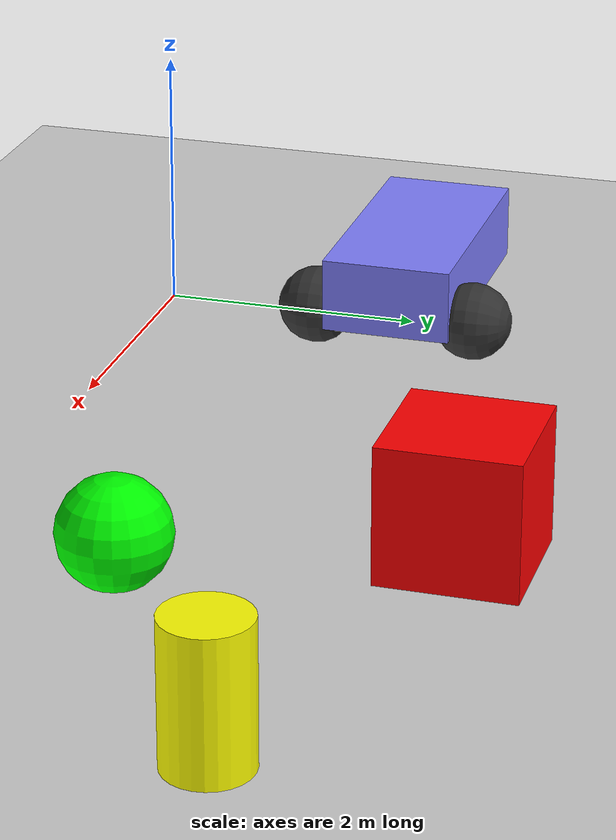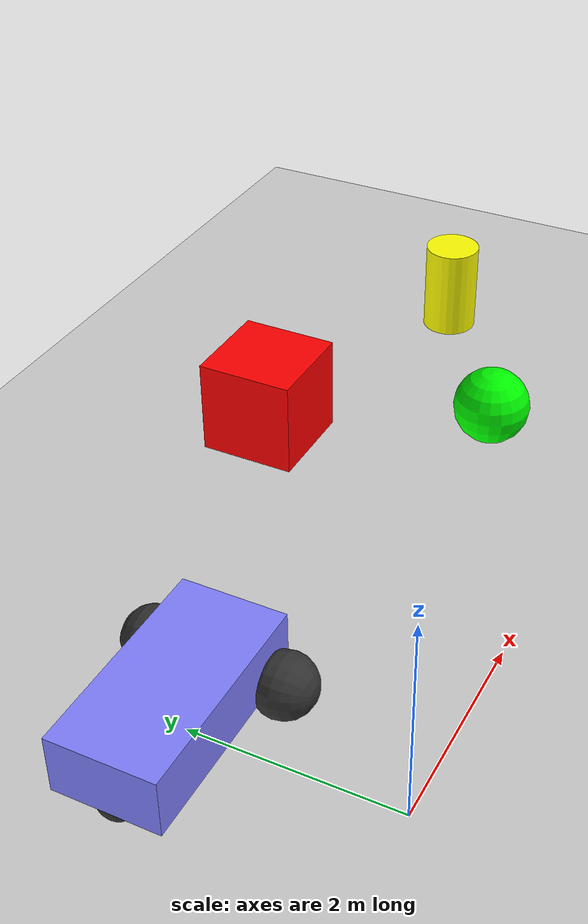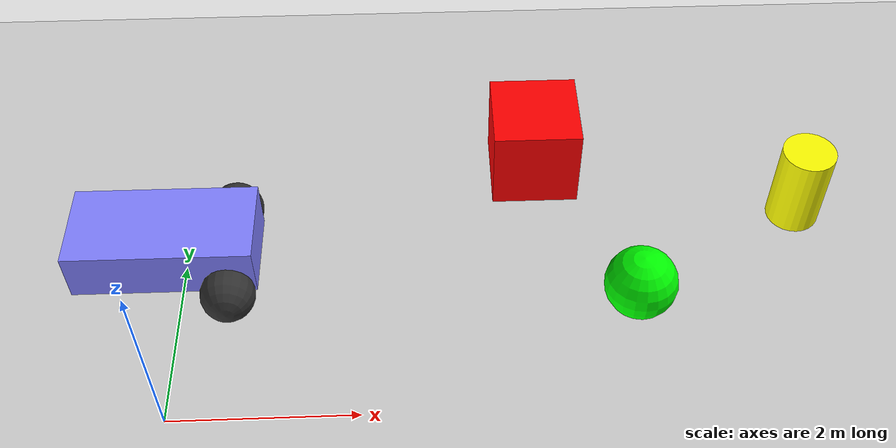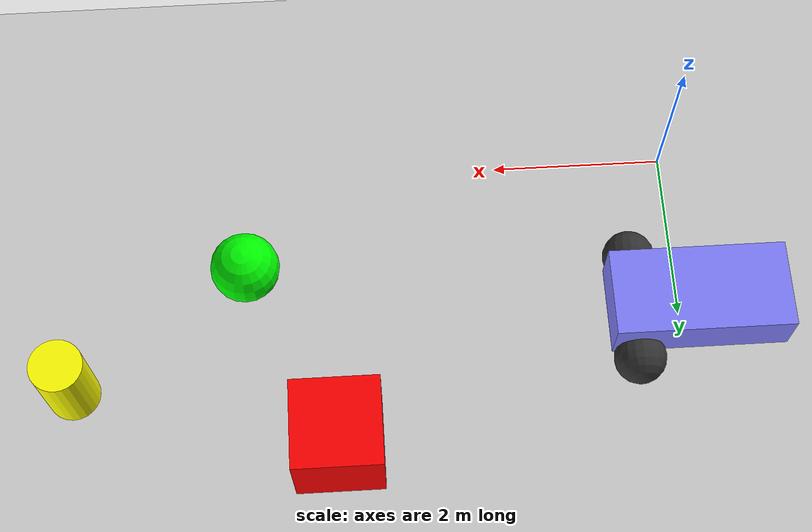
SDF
<?xml version="1.0" ?>
<sdf version="1.6">
  <world name="pilotage_yard">

    <physics name="1ms" type="ignored">
      <max_step_size>0.001</max_step_size>
      <real_time_factor>1.0</real_time_factor>
    </physics>
    <plugin
      filename="gz-sim-physics-system"
      name="gz::sim::systems::Physics">
    </plugin>
    <plugin
      filename="gz-sim-sensors-system"
      name="gz::sim::systems::Sensors">
      <render_engine>ogre2</render_engine>
    </plugin>
    <plugin
      filename="gz-sim-user-commands-system"
      name="gz::sim::systems::UserCommands">
    </plugin>
    <plugin
      filename="gz-sim-scene-broadcaster-system"
      name="gz::sim::systems::SceneBroadcaster">
    </plugin>

    <scene>
      <ambient>1.0 1.0 1.0</ambient>
      <background>0.8 0.8 0.8</background>
      <grid>false</grid>
    </scene>

    <light type="directional" name="sun">
      <cast_shadows>true</cast_shadows>
      <pose>0 0 10 0 0 0</pose>
      <diffuse>1 1 1 1</diffuse>
      <specular>0.5 0.5 0.5 1</specular>
      <attenuation>
        <range>1000</range>
        <constant>0.9</constant>
        <linear>0.01</linear>
        <quadratic>0.001</quadratic>
      </attenuation>
      <direction>-0.5 0.1 -0.9</direction>
    </light>

    <model name="ground_plane">
      <static>true</static>
      <link name="link">
        <collision name="collision">
          <geometry>
            <plane>
              <normal>0 0 1</normal>
              <size>100 100</size>
            </plane>
          </geometry>
        </collision>
        <visual name="visual">
          <geometry>
            <plane>
              <normal>0 0 1</normal>
              <size>100 100</size>
            </plane>
          </geometry>
          <material>
            <ambient>0.8 0.8 0.8 1</ambient>
            <diffuse>0.8 0.8 0.8 1</diffuse>
            <specular>0.8 0.8 0.8 1</specular>
          </material>
        </visual>
      </link>
    </model>

    <!-- Colored primitive obstacles ahead of vehicle_blue's start pose and
         heading, so the onboard camera view visibly changes while driving
         forward. -->
    <model name="obstacle_red_box">
      <static>true</static>
      <pose>4 3.4 0.5 0 0 0</pose>
      <link name="link">
        <visual name="visual">
          <geometry>
            <box>
              <size>1 1 1</size>
            </box>
          </geometry>
          <material>
            <ambient>1 0 0 1</ambient>
            <diffuse>1 0 0 1</diffuse>
            <specular>1 0 0 1</specular>
          </material>
        </visual>
        <collision name="collision">
          <geometry>
            <box>
              <size>1 1 1</size>
            </box>
          </geometry>
        </collision>
      </link>
    </model>

    <model name="obstacle_green_sphere">
      <static>true</static>
      <pose>5 1.3 0.4 0 0 0</pose>
      <link name="link">
        <visual name="visual">
          <geometry>
            <sphere>
              <radius>0.4</radius>
            </sphere>
          </geometry>
          <material>
            <ambient>0 1 0 1</ambient>
            <diffuse>0 1 0 1</diffuse>
            <specular>0 1 0 1</specular>
          </material>
        </visual>
        <collision name="collision">
          <geometry>
            <sphere>
              <radius>0.4</radius>
            </sphere>
          </geometry>
        </collision>
      </link>
    </model>

    <model name="obstacle_yellow_cylinder">
      <static>true</static>
      <pose>7 2.6 0.5 0 0 0</pose>
      <link name="link">
        <visual name="visual">
          <geometry>
            <cylinder>
              <radius>0.3</radius>
              <length>1</length>
            </cylinder>
          </geometry>
          <material>
            <ambient>1 1 0 1</ambient>
            <diffuse>1 1 0 1</diffuse>
            <specular>1 1 0 1</specular>
          </material>
        </visual>
        <collision name="collision">
          <geometry>
            <cylinder>
              <radius>0.3</radius>
              <length>1</length>
            </cylinder>
          </geometry>
        </collision>
      </link>
    </model>

    <model name='vehicle_blue'>
      <pose>0 2 0.325 0 -0 0</pose>

      <link name='chassis'>
        <pose>-0.151427 -0 0.175 0 -0 0</pose>
        <inertial>
          <mass>1.14395</mass>
          <inertia>
            <ixx>0.126164</ixx>
            <ixy>0</ixy>
            <ixz>0</ixz>
            <iyy>0.416519</iyy>
            <iyz>0</iyz>
            <izz>0.481014</izz>
          </inertia>
        </inertial>
        <visual name='visual'>
          <geometry>
            <box>
              <size>2.01142 1 0.568726</size>
            </box>
          </geometry>
          <material>
            <ambient>0.5 0.5 1.0 1</ambient>
            <diffuse>0.5 0.5 1.0 1</diffuse>
            <specular>0.0 0.0 1.0 1</specular>
          </material>
        </visual>
        <collision name='collision'>
          <geometry>
            <box>
              <size>2.01142 1 0.568726</size>
            </box>
          </geometry>
        </collision>

        <!-- Onboard forward-facing camera, rigidly attached to the chassis
             (ADR-0008: capture as close as practical to the render
             pipeline; here, mounted directly on the vehicle body). -->
        <sensor name="camera" type="camera">
          <pose>1.1 0 0.3 0 0 0</pose>
          <camera>
            <horizontal_fov>1.396</horizontal_fov>
            <image>
              <width>320</width>
              <height>240</height>
            </image>
            <clip>
              <near>0.1</near>
              <far>100</far>
            </clip>
          </camera>
          <always_on>1</always_on>
          <update_rate>30</update_rate>
          <visualize>true</visualize>
          <topic>camera</topic>
        </sensor>

        <sensor name="chase_camera" type="camera">
          <pose>-3.0 0 1.8 0 0.30 0</pose>
          <camera>
            <horizontal_fov>1.6</horizontal_fov>
            <image>
              <width>320</width>
              <height>240</height>
            </image>
            <clip>
              <near>0.1</near>
              <far>100</far>
            </clip>
          </camera>
          <always_on>1</always_on>
          <update_rate>30</update_rate>
          <visualize>true</visualize>
          <topic>chase_camera</topic>
        </sensor>
      </link>

      <link name='left_wheel'>
        <pose>0.554283 0.625029 -0.025 -1.5707 0 0</pose>
        <inertial>
          <mass>2</mass>
          <inertia>
            <ixx>0.145833</ixx>
            <ixy>0</ixy>
            <ixz>0</ixz>
            <iyy>0.145833</iyy>
            <iyz>0</iyz>
            <izz>0.125</izz>
          </inertia>
        </inertial>
        <visual name='visual'>
          <geometry>
            <sphere>
              <radius>0.3</radius>
            </sphere>
          </geometry>
          <material>
            <ambient>0.2 0.2 0.2 1</ambient>
            <diffuse>0.2 0.2 0.2 1</diffuse>
            <specular>0.2 0.2 0.2 1</specular>
          </material>
        </visual>
        <collision name='collision'>
          <geometry>
            <sphere>
              <radius>0.3</radius>
            </sphere>
          </geometry>
          <surface>
            <friction>
              <ode>
                <mu>1</mu>
                <mu2>1</mu2>
                <slip1>0.035</slip1>
                <slip2>0</slip2>
                <fdir1>0 0 1</fdir1>
              </ode>
              <bullet>
                <friction>1</friction>
                <friction2>1</friction2>
                <rolling_friction>0.1</rolling_friction>
              </bullet>
            </friction>
          </surface>
        </collision>
      </link>

      <link name='right_wheel'>
        <pose>0.554282 -0.625029 -0.025 -1.5707 0 0</pose>
        <inertial>
          <mass>2</mass>
          <inertia>
            <ixx>0.145833</ixx>
            <ixy>0</ixy>
            <ixz>0</ixz>
            <iyy>0.145833</iyy>
            <iyz>0</iyz>
            <izz>0.125</izz>
          </inertia>
        </inertial>
        <visual name='visual'>
          <geometry>
            <sphere>
              <radius>0.3</radius>
            </sphere>
          </geometry>
          <material>
            <ambient>0.2 0.2 0.2 1</ambient>
            <diffuse>0.2 0.2 0.2 1</diffuse>
            <specular>0.2 0.2 0.2 1</specular>
          </material>
        </visual>
        <collision name='collision'>
          <geometry>
            <sphere>
              <radius>0.3</radius>
            </sphere>
          </geometry>
          <surface>
            <friction>
              <ode>
                <mu>1</mu>
                <mu2>1</mu2>
                <slip1>0.035</slip1>
                <slip2>0</slip2>
                <fdir1>0 0 1</fdir1>
              </ode>
              <bullet>
                <friction>1</friction>
                <friction2>1</friction2>
                <rolling_friction>0.1</rolling_friction>
              </bullet>
            </friction>
          </surface>
        </collision>
      </link>

      <link name='caster'>
        <pose>-0.957138 -0 -0.125 0 -0 0</pose>
        <inertial>
          <mass>1</mass>
          <inertia>
            <ixx>0.1</ixx>
            <ixy>0</ixy>
            <ixz>0</ixz>
            <iyy>0.1</iyy>
            <iyz>0</iyz>
            <izz>0.1</izz>
          </inertia>
        </inertial>
        <visual name='visual'>
          <geometry>
            <sphere>
              <radius>0.2</radius>
            </sphere>
          </geometry>
          <material>
            <ambient>0.2 0.2 0.2 1</ambient>
            <diffuse>0.2 0.2 0.2 1</diffuse>
            <specular>0.2 0.2 0.2 1</specular>
          </material>
        </visual>
        <collision name='collision'>
          <geometry>
            <sphere>
              <radius>0.2</radius>
            </sphere>
          </geometry>
        </collision>
      </link>

      <joint name='left_wheel_joint' type='revolute'>
        <parent>chassis</parent>
        <child>left_wheel</child>
        <axis>
          <xyz>0 0 1</xyz>
          <limit>
            <lower>-1.79769e+308</lower>
            <upper>1.79769e+308</upper>
          </limit>
        </axis>
      </joint>

      <joint name='right_wheel_joint' type='revolute'>
        <parent>chassis</parent>
        <child>right_wheel</child>
        <axis>
          <xyz>0 0 1</xyz>
          <limit>
            <lower>-1.79769e+308</lower>
            <upper>1.79769e+308</upper>
          </limit>
        </axis>
      </joint>

      <joint name='caster_wheel' type='ball'>
        <parent>chassis</parent>
        <child>caster</child>
      </joint>

      <plugin
        filename="gz-sim-diff-drive-system"
        name="gz::sim::systems::DiffDrive">
        <left_joint>left_wheel_joint</left_joint>
        <right_joint>right_wheel_joint</right_joint>
        <wheel_separation>1.25</wheel_separation>
        <wheel_radius>0.3</wheel_radius>
        <odom_publish_frequency>30</odom_publish_frequency>
        <max_linear_acceleration>1</max_linear_acceleration>
        <min_linear_acceleration>-1</min_linear_acceleration>
        <max_angular_acceleration>2</max_angular_acceleration>
        <min_angular_acceleration>-2</min_angular_acceleration>
        <max_linear_velocity>0.5</max_linear_velocity>
        <min_linear_velocity>-0.5</min_linear_velocity>
        <max_angular_velocity>1</max_angular_velocity>
        <min_angular_velocity>-1</min_angular_velocity>
      </plugin>

    </model>

  </world>
</sdf>
